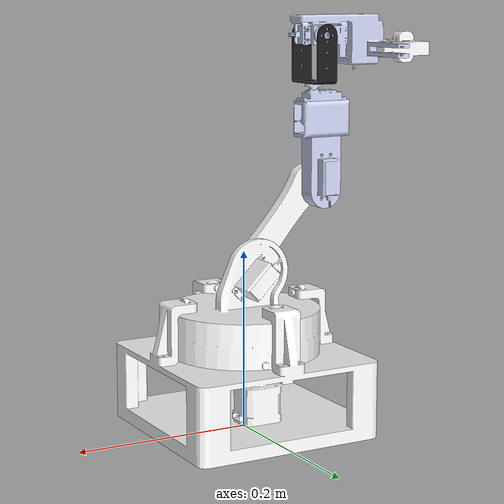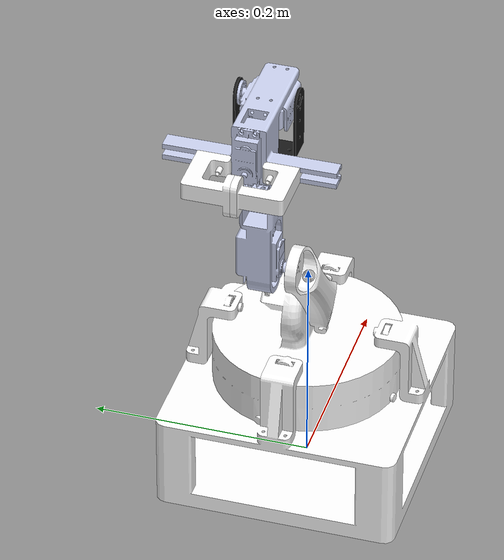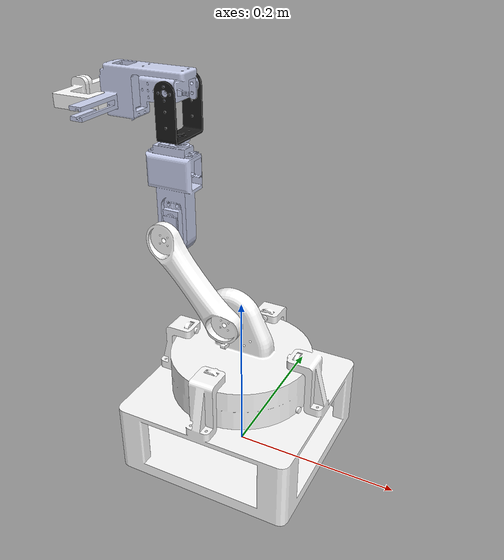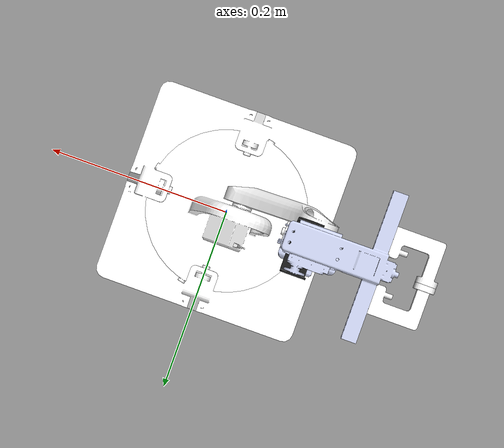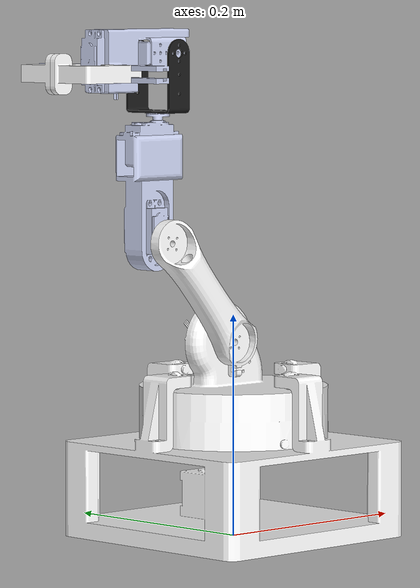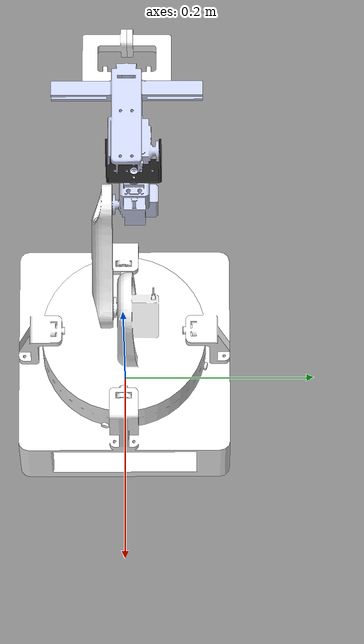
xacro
<?xml version="1.0" encoding="utf-8"?>
<robot xmlns:xacro="http://www.ros.org/wiki/xacro" name="robot_arm">

  <!--      PROPERTIES      -->

  <!-- Joint limits -->
  <xacro:property name="joint_lower"   value="-1.57" />
  <xacro:property name="joint_upper"   value="1.57"  />
  <xacro:property name="joint_effort"  value="10.0"  />
  <xacro:property name="joint_vel"     value="1.0"   />

  <!-- Gripper limits -->
  <xacro:property name="gripper_effort" value="5.0" />
  <xacro:property name="gripper_vel"    value="0.1" />

  <!-- Damping -->
  <xacro:property name="damping" value="0.1" />

  <!-- Mesh package -->
  <xacro:property name="mesh_pkg" value="arm_description" />

  <!--       MACROS         -->

  <!-- Macro for active revolute joint in ros2_control block        -->
  <!-- NOTE: j_min/j_max used instead of min/max (xacro reserved)  -->
  <xacro:macro name="revolute_ros2_control" params="joint_name j_min:=-1.57 j_max:=1.57">
    <joint name="${joint_name}">
      <command_interface name="position">
        <param name="min">${j_min}</param>
        <param name="max">${j_max}</param>
      </command_interface>
      <state_interface name="position"/>
      <state_interface name="velocity"/>
    </joint>
  </xacro:macro>

  <!-- Macro for passive joint in ros2_control block (state only) -->
  <xacro:macro name="passive_ros2_control" params="joint_name">
    <joint name="${joint_name}">
      <state_interface name="position"/>
      <state_interface name="velocity"/>
    </joint>
  </xacro:macro>

  <!--        LINKS         -->

  <link name="base_footprint" />

  <link name="base_link">
    <inertial>
      <origin
        xyz="5.00753655452435E-06 0.00106730808800359 0.0399725317757015"
        rpy="0 0 0" />
      <mass value="1.96669728638092" />
      <inertia
        ixx="0.00884985875966075"
        ixy="2.76890192206647E-09"
        ixz="8.90320241950132E-09"
        iyy="0.00885380133763815"
        iyz="9.72110282016303E-08"
        izz="0.0171125671711383" />
    </inertial>
    <visual>
      <origin xyz="0 0 0" rpy="0 0 0" />
      <geometry>
        <mesh filename="package://${mesh_pkg}/meshes/base_link.STL" />
      </geometry>
      <material name="">
        <color rgba="1 1 1 1" />
      </material>
    </visual>
    <collision>
      <origin xyz="0 0 0" rpy="0 0 0" />
      <geometry>
        <mesh filename="package://${mesh_pkg}/meshes/base_link.STL" />
      </geometry>
    </collision>
  </link>

  <link name="gears_link">
    <inertial>
      <origin
        xyz="-0.000646482723518194 0.000582676567977392 0.120933732816505"
        rpy="0 0 0" />
      <mass value="1.30703305083613" />
      <inertia
        ixx="0.00277835820028954"
        ixy="3.6365365105828E-07"
        ixz="3.81168059989604E-05"
        iyy="0.00282266552056642"
        iyz="-3.85377676594337E-06"
        izz="0.00506713939784111" />
    </inertial>
    <visual>
      <origin xyz="0 0 0" rpy="0 0 0" />
      <geometry>
        <mesh filename="package://${mesh_pkg}/meshes/gears_link.STL" />
      </geometry>
      <material name="">
        <color rgba="1 1 1 1" />
      </material>
    </visual>
    <collision>
      <origin xyz="0 0 0" rpy="0 0 0" />
      <geometry>
        <mesh filename="package://${mesh_pkg}/meshes/gears_link.STL" />
      </geometry>
    </collision>
  </link>

  <link name="link_1">
    <inertial>
      <origin
        xyz="-0.0374079774245866 -0.00165911196637181 0.0443811892357548"
        rpy="0 0 0" />
      <mass value="0.0925850477466471" />
      <inertia
        ixx="9.51578645513088E-05"
        ixy="2.19041423250799E-07"
        ixz="6.89676206365892E-05"
        iyy="0.000159861164318088"
        iyz="-2.61533993707837E-07"
        izz="7.08309116823717E-05" />
    </inertial>
    <visual>
      <origin xyz="0 0 0" rpy="0 0 0" />
      <geometry>
        <mesh filename="package://${mesh_pkg}/meshes/link_1.STL" />
      </geometry>
      <material name="">
        <color rgba="1 1 1 1" />
      </material>
    </visual>
    <collision>
      <origin xyz="0 0 0" rpy="0 0 0" />
      <geometry>
        <mesh filename="package://${mesh_pkg}/meshes/link_1.STL" />
      </geometry>
    </collision>
  </link>

  <link name="link_2">
    <inertial>
      <origin
        xyz="0.000120042512608443 0.0305979287540822 0.0437360389039791"
        rpy="0 0 0" />
      <mass value="0.148049393384596" />
      <inertia
        ixx="0.000109549702250209"
        ixy="-1.37595794678038E-10"
        ixz="1.26611772840011E-09"
        iyy="0.000121617104881533"
        iyz="1.12270921756017E-06"
        izz="3.35967090400384E-05" />
    </inertial>
    <visual>
      <origin xyz="0 0 0" rpy="0 0 0" />
      <geometry>
        <mesh filename="package://${mesh_pkg}/meshes/link_2.STL" />
      </geometry>
      <material name="">
        <color rgba="0.792156862745098 0.819607843137255 0.933333333333333 1" />
      </material>
    </visual>
    <collision>
      <origin xyz="0 0 0" rpy="0 0 0" />
      <geometry>
        <mesh filename="package://${mesh_pkg}/meshes/link_2.STL" />
      </geometry>
    </collision>
  </link>

  <link name="bracket_1">
    <inertial>
      <origin
        xyz="-8.88178419700125E-16 -1.11022302462516E-16 0.020100181267799"
        rpy="0 0 0" />
      <mass value="0.00809692470259986" />
      <inertia
        ixx="7.81705775991712E-06"
        ixy="-2.08814637055607E-22"
        ixz="-3.26154802250828E-21"
        iyy="3.68506140288143E-06"
        iyz="-5.8370825438186E-22"
        izz="4.99677110669238E-06" />
    </inertial>
    <visual>
      <origin xyz="0 0 0" rpy="0 0 0" />
      <geometry>
        <mesh filename="package://${mesh_pkg}/meshes/bracket_1.STL" />
      </geometry>
      <material name="">
        <color rgba="0.098 0.098 0.098 1" />
      </material>
    </visual>
    <collision>
      <origin xyz="0 0 0" rpy="0 0 0" />
      <geometry>
        <mesh filename="package://${mesh_pkg}/meshes/bracket_1.STL" />
      </geometry>
    </collision>
  </link>

  <link name="end_effector_link">
    <inertial>
      <origin
        xyz="-0.0444277269513493 -0.0296709800292212 -0.00252321817991552"
        rpy="0 0 0" />
      <mass value="0.140812329806381" />
      <inertia
        ixx="8.61286980685427E-05"
        ixy="1.48047890869651E-09"
        ixz="-2.22760533360745E-05"
        iyy="9.00875433087329E-05"
        iyz="-1.59770859227543E-07"
        izz="0.000118830644752097" />
    </inertial>
    <visual>
      <origin xyz="0 0 0" rpy="0 0 0" />
      <geometry>
        <mesh filename="package://${mesh_pkg}/meshes/end_effector_link.STL" />
      </geometry>
      <material name="">
        <color rgba="0.792156862745098 0.819607843137255 0.933333333333333 1" />
      </material>
    </visual>
    <collision>
      <origin xyz="0 0 0" rpy="0 0 0" />
      <geometry>
        <mesh filename="package://${mesh_pkg}/meshes/end_effector_link.STL" />
      </geometry>
    </collision>
  </link>

  <link name="left_clamp_link">
    <inertial>
      <origin
        xyz="-0.0013935388930264 0.00464113678666978 -0.00749999927742095"
        rpy="0 0 0" />
      <mass value="0.0323665959300894" />
      <inertia
        ixx="7.06603054404732E-06"
        ixy="3.70552446082972E-06"
        ixz="1.02020689410545E-13"
        iyy="1.13651241649746E-05"
        iyz="-2.4682816045368E-13"
        izz="1.6440787852164E-05" />
    </inertial>
    <visual>
      <origin xyz="0 0 0" rpy="0 0 0" />
      <geometry>
        <mesh filename="package://${mesh_pkg}/meshes/left_clamp_link.STL" />
      </geometry>
      <material name="">
        <color rgba="1 1 1 1" />
      </material>
    </visual>
    <collision>
      <origin xyz="0 0 0" rpy="0 0 0" />
      <geometry>
        <mesh filename="package://${mesh_pkg}/meshes/left_clamp_link.STL" />
      </geometry>
    </collision>
  </link>

  <link name="right_clamp">
    <inertial>
      <origin
        xyz="-0.00139353889303906 -0.00464113678631295 -0.0075000007226167"
        rpy="0 0 0" />
      <mass value="0.0323665959300896" />
      <inertia
        ixx="7.06603054404734E-06"
        ixy="-3.70552446082971E-06"
        ixz="-1.02020641761228E-13"
        iyy="1.13651241649746E-05"
        iyz="-2.4682814406026E-13"
        izz="1.64407878521641E-05" />
    </inertial>
    <visual>
      <origin xyz="0 0 0" rpy="0 0 0" />
      <geometry>
        <mesh filename="package://${mesh_pkg}/meshes/right_clamp.STL" />
      </geometry>
      <material name="">
        <color rgba="1 1 1 1" />
      </material>
    </visual>
    <collision>
      <origin xyz="0 0 0" rpy="0 0 0" />
      <geometry>
        <mesh filename="package://${mesh_pkg}/meshes/right_clamp.STL" />
      </geometry>
    </collision>
  </link>

  <!--        JOINTS        -->

  <joint name="base_joint" type="fixed">
    <parent link="base_footprint" />
    <child  link="base_link" />
    <origin rpy="0 0 0" xyz="0 0 0" />
  </joint>

  <joint name="stepper_joint" type="continuous">
    <origin xyz="0 0 0" rpy="0 0 0" />
    <parent link="base_link" />
    <child  link="gears_link" />
    <axis   xyz="0 0 1" />
    <limit  effort="${joint_effort}" velocity="${joint_vel}" />
  </joint>

  <joint name="joint_1" type="revolute">
    <origin
      xyz="-0.0139089123190268 -0.0164898687365239 0.177428154723944"
      rpy="0 0 0" />
    <parent link="gears_link" />
    <child  link="link_1" />
    <axis   xyz="0 1 0" />
    <limit  lower="${joint_lower}" upper="${joint_upper}"
            effort="${joint_effort}" velocity="${joint_vel}" />
  </joint>

  <joint name="joint_2" type="revolute">
    <origin
      xyz="-0.0771345131623846 0 0.0919253331742771"
      rpy="0 0 0" />
    <parent link="link_1" />
    <child  link="link_2" />
    <axis   xyz="0 -1 0" />
    <limit  lower="${joint_lower}" upper="${joint_upper}"
            effort="${joint_effort}" velocity="${joint_vel}" />
  </joint>

  <joint name="bracket_1_joint" type="revolute">
    <origin
      xyz="0.0102500000000005 0.0295299999999998 0.115849999999999"
      rpy="0 0 0" />
    <parent link="link_2" />
    <child  link="bracket_1" />
    <axis   xyz="0 0 -1" />
    <limit  lower="${joint_lower}" upper="${joint_upper}"
            effort="${joint_effort}" velocity="${joint_vel}" />
  </joint>

  <joint name="end_effector_joint" type="revolute">
    <origin
      xyz="0 0.0239999999999756 0.0504999999999962"
      rpy="0 0 0" />
    <parent link="bracket_1" />
    <child  link="end_effector_link" />
    <axis   xyz="0 -1 0" />
    <limit  lower="${joint_lower}" upper="${joint_upper}"
            effort="${joint_effort}" velocity="${joint_vel}" />
  </joint>

  <!-- Gripper joints - passive, not controlled by trajectory controller -->
  <joint name="lefft_clamp_joint" type="prismatic">
    <origin
      xyz="-0.105566455801366 -0.0610142944129759 -0.00859999999999328"
      rpy="0 0 0" />
    <parent link="end_effector_link" />
    <child  link="left_clamp_link" />
    <axis   xyz="0 -1 0" />
    <limit  lower="0" upper="0.05"
            effort="${gripper_effort}" velocity="${gripper_vel}" />
  </joint>

  <joint name="right_clamp_joint" type="prismatic">
    <origin
      xyz="-0.105566455801366 -0.000148461531559452 -0.00859999999999284"
      rpy="0 0 0" />
    <parent link="end_effector_link" />
    <child  link="right_clamp" />
    <axis   xyz="0 -1 0" />
    <limit  lower="-0.05" upper="0.0"
            effort="${gripper_effort}" velocity="${gripper_vel}" />
  </joint>

  <!-- ROS2 CONTROL + GAZEBO HARMONIC INTEGRATION  -->

  <ros2_control name="GazeboSystem" type="system">
    <hardware>
      <plugin>gz_ros2_control/GazeboSimSystem</plugin>
    </hardware>

    <!-- Continuous base rotation - no position limits needed -->
    <joint name="stepper_joint">
      <command_interface name="position"/>
      <state_interface name="position"/>
      <state_interface name="velocity"/>
    </joint>

    <!-- Arm joints - active control via trajectory controller -->
    <xacro:revolute_ros2_control joint_name="joint_1"            j_min="-1.57" j_max="1.57" />
    <xacro:revolute_ros2_control joint_name="joint_2"            j_min="-1.57" j_max="1.57" />
    <xacro:revolute_ros2_control joint_name="bracket_1_joint"    j_min="-1.57" j_max="1.57" />
    <xacro:revolute_ros2_control joint_name="end_effector_joint" j_min="-1.57" j_max="1.57" />

    <!-- Gripper joints - passive, state feedback only -->
    <xacro:passive_ros2_control joint_name="lefft_clamp_joint" />
    <xacro:passive_ros2_control joint_name="right_clamp_joint" />

  </ros2_control>

  <!-- Gazebo Harmonic ros2_control plugin -->
  <gazebo>
    <plugin filename="gz_ros2_control-system"
            name="gz_ros2_control::GazeboSimROS2ControlPlugin">
      <parameters>$(find moveit_trial)/config/ros2_controllers.yaml</parameters>
    </plugin>
  </gazebo>

  <!-- Joint damping to prevent oscillation after movement -->
  <gazebo reference="stepper_joint">
    <dampingFactor>${damping}</dampingFactor>
  </gazebo>
  <gazebo reference="joint_1">
    <dampingFactor>${damping}</dampingFactor>
  </gazebo>
  <gazebo reference="joint_2">
    <dampingFactor>${damping}</dampingFactor>
  </gazebo>
  <gazebo reference="bracket_1_joint">
    <dampingFactor>${damping}</dampingFactor>
  </gazebo>
  <gazebo reference="end_effector_joint">
    <dampingFactor>${damping}</dampingFactor>
  </gazebo>
  <gazebo reference="lefft_clamp_joint">
    <dampingFactor>${damping}</dampingFactor>
  </gazebo>
  <gazebo reference="right_clamp_joint">
    <dampingFactor>${damping}</dampingFactor>
  </gazebo>

</robot>
